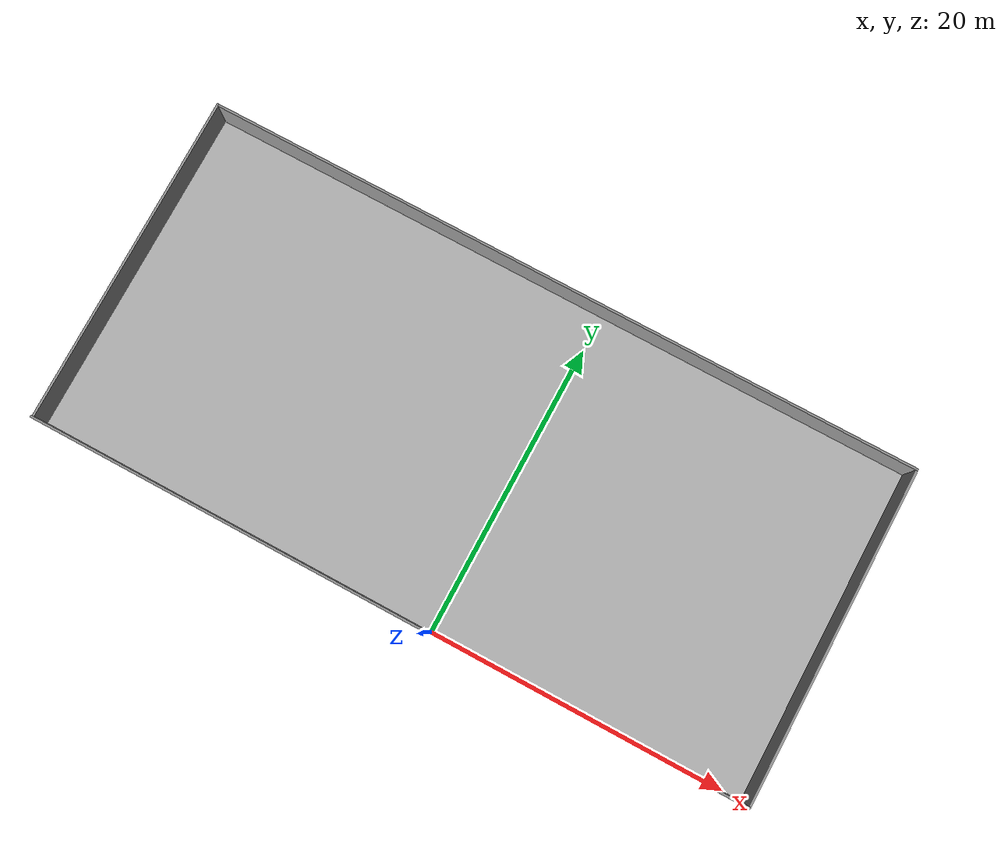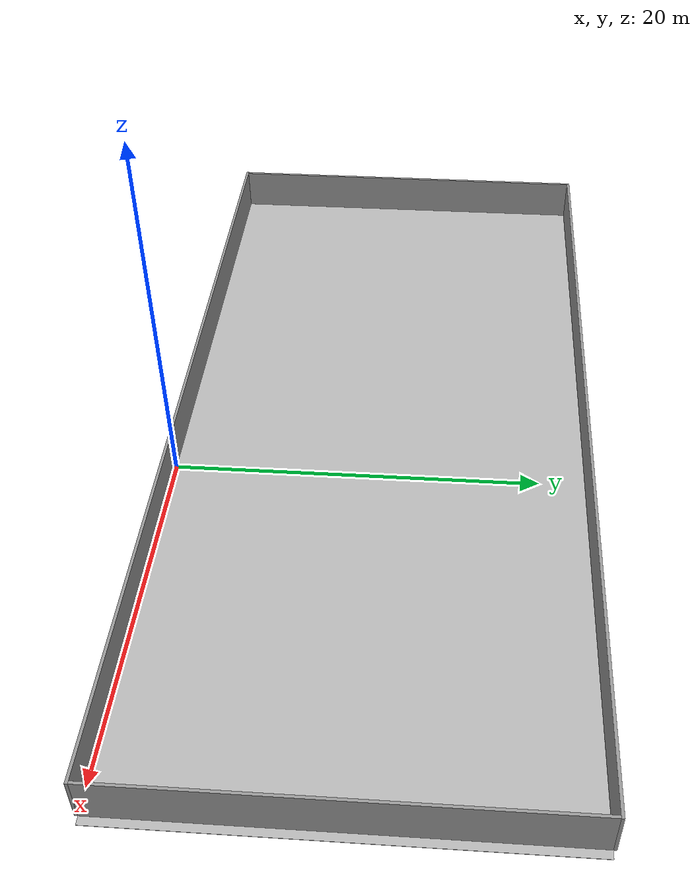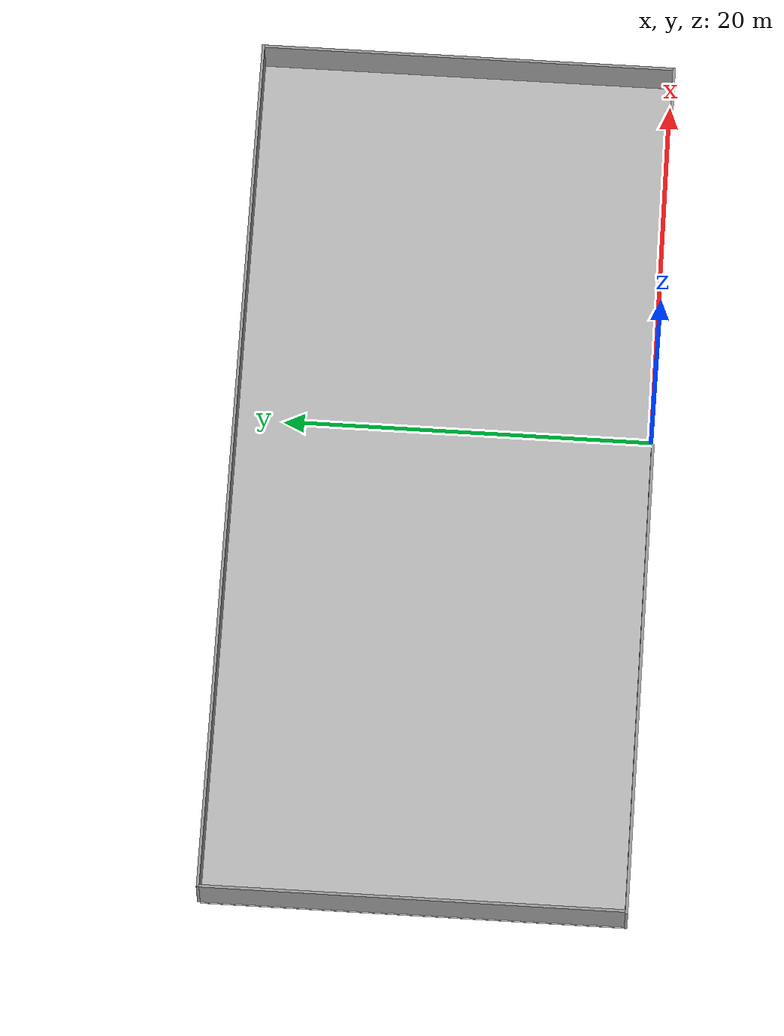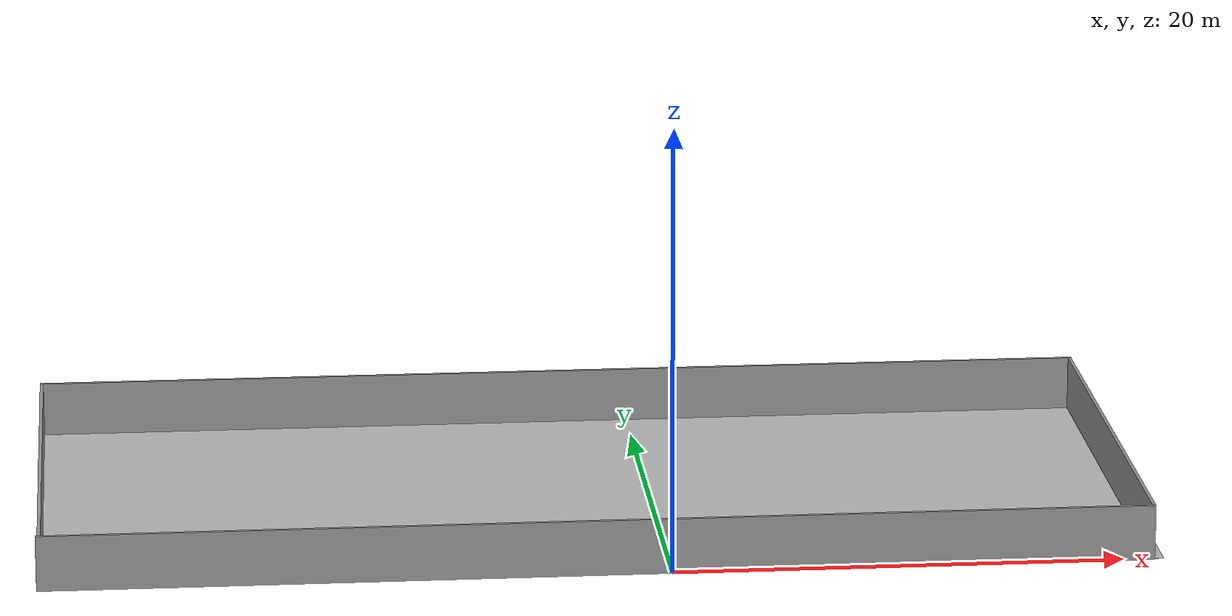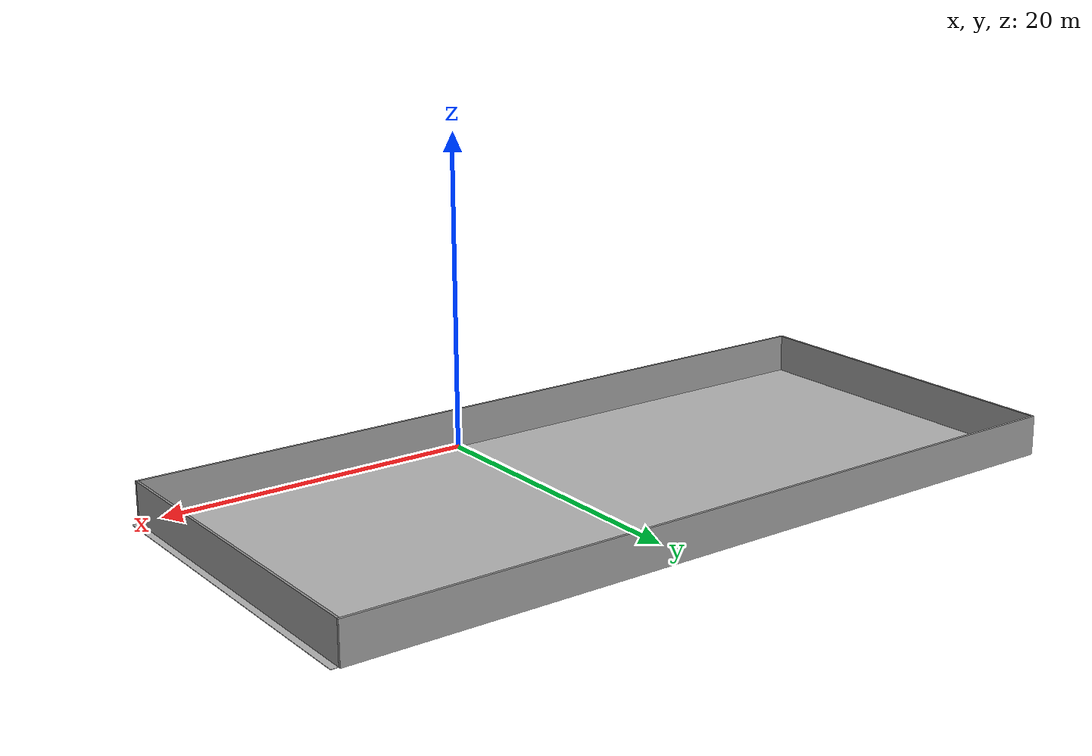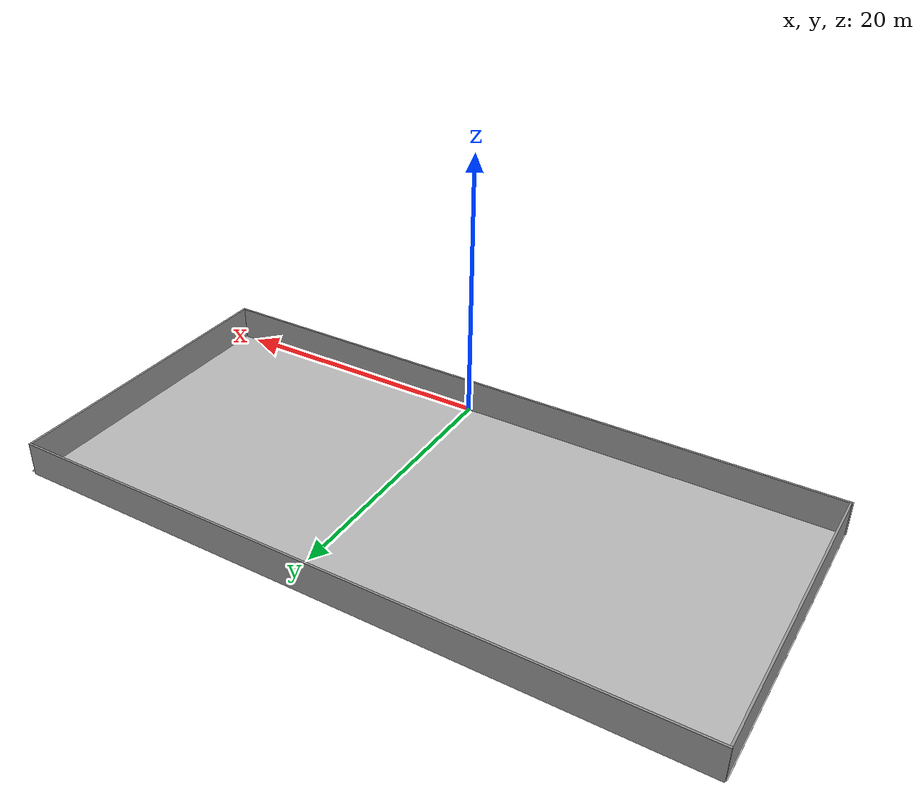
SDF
<sdf version="1.7">
 <world name="default">
  <model name="ceiling">
   <pose>-2.97 11.25 3 3.14159 -0 3.14159</pose>
   <static>1</static>
   <link name="link">
    <visual name="visual">
     <geometry><plane><normal>0 0 1</normal><size>49.5 22.5</size></plane></geometry>
     <material>
      <script>
       <uri>file://media/materials/scripts/</uri>
       <uri>file://media/materials/textures/</uri>
       <name>ServiceSim/Ceiling</name>
      </script>
     </material>
    </visual>
   </link>
  </model>
  <model name="floor">
   <pose>-2.97 11.25 -0.001 0 -0 0</pose>
   <static>1</static>
   <link name="link">
    <visual name="visual">
     <geometry><plane><normal>0 0 1</normal><size>49.5 22.5</size></plane></geometry>
     <material>
      <script>
       <uri>file://media/materials/scripts/</uri>
       <uri>file://media/materials/textures/</uri>
       <name>ServiceSim/Hallway</name>
      </script>
     </material>
    </visual>
    <collision name="collision">
     <geometry><plane><normal>0 0 1</normal><size>49.5 22.5</size></plane></geometry>
     <surface><friction><ode><mu>1</mu><mu2>1</mu2></ode></friction></surface>
    </collision>
   </link>
  </model>
  <model name="Office_Wall">
   <pose>-3.19 11.25 0 0 -0 0</pose>
   <link name="Wall_30">
    <collision name="Wall_30_Collision">
     <geometry><box><size>49.09 0.15 2.5</size></box></geometry>
     <pose>0 0 1.25 0 -0 0</pose>
    </collision>
    <visual name="Wall_30_Visual">
     <pose>0 0 1.25 0 -0 0</pose>
     <geometry><box><size>49.09 0.15 2.5</size></box></geometry>
     <material>
      <script><uri>file://media/materials/scripts/gazebo.material</uri><name>Gazebo/Grey</name></script>
      <ambient>1 1 1 1</ambient>
     </material>
     <meta><layer>0</layer></meta>
    </visual>
    <pose>-0 -11.33 0 0 -0 0</pose>
   </link>
   <link name="Wall_35">
    <collision name="Wall_35_Collision">
     <geometry><box><size>22.51 0.15 2.5</size></box></geometry>
     <pose>0 0 1.25 0 -0 0</pose>
    </collision>
    <visual name="Wall_35_Visual">
     <pose>0 0 1.25 0 -0 0</pose>
     <geometry><box><size>22.51 0.15 2.5</size></box></geometry>
     <material>
      <script><uri>file://media/materials/scripts/gazebo.material</uri><name>Gazebo/Grey</name></script>
      <ambient>1 1 1 1</ambient>
     </material>
     <meta><layer>0</layer></meta>
    </visual>
    <pose>24.47 -0 0 0 -0 1.5708</pose>
   </link>
   <link name="Wall_70">
    <collision name="Wall_70_Collision">
     <geometry><box><size>49.01 0.15 2.5</size></box></geometry>
     <pose>0 0 1.25 0 -0 0</pose>
    </collision>
    <visual name="Wall_70_Visual">
     <pose>0 0 1.25 0 -0 0</pose>
     <geometry><box><size>49.01 0.15 2.5</size></box></geometry>
     <material>
      <script><uri>file://media/materials/scripts/gazebo.material</uri><name>Gazebo/Grey</name></script>
      <ambient>1 1 1 1</ambient>
     </material>
     <meta><layer>0</layer></meta>
    </visual>
    <pose>0.039999 11.33 0 0 -0 0</pose>
   </link>
   <link name="Wall_72">
    <collision name="Wall_72_Collision">
     <geometry><box><size>22.66 0.15 2.5</size></box></geometry>
     <pose>0 0 1.25 0 -0 0</pose>
    </collision>
    <visual name="Wall_72_Visual">
     <pose>0 0 1.25 0 -0 0</pose>
     <geometry><box><size>22.66 0.15 2.5</size></box></geometry>
     <material>
      <script><uri>file://media/materials/scripts/gazebo.material</uri><name>Gazebo/Grey</name></script>
      <ambient>1 1 1 1</ambient>
     </material>
     <meta><layer>0</layer></meta>
    </visual>
    <pose>-24.39 0.074999 0 0 -0 -1.5708</pose>
   </link>
   <static>1</static>
  </model>
 </world>
</sdf>
